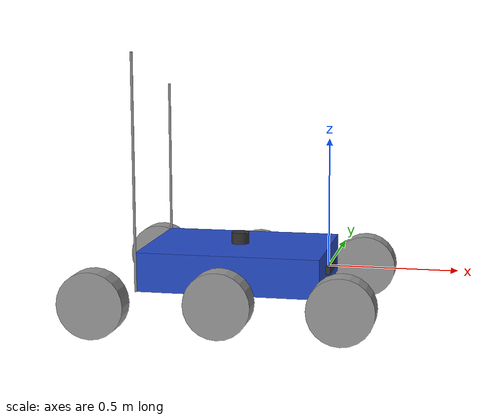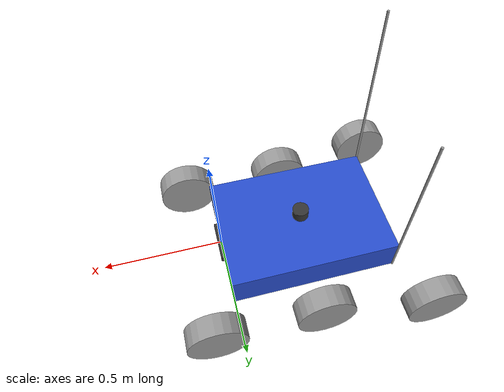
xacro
<?xml version="1.0"?>
<robot xmlns:xacro="http://www.ros.org/wiki/xacro">

    <!-- ROBOT DIMENSIONS (measured Feb 2026, all values in meters) -->
    <xacro:property name="base_length" value="0.7112" />      <!-- 28 inches -->
    <xacro:property name="base_width"  value="0.508"  />      <!-- 20 inches -->
    <xacro:property name="base_height" value="0.1524" />      <!-- 6 inches  -->
    <xacro:property name="base_mass"   value="6.8"    />      <!-- ~15 lbs estimate -->

    <!-- Wheel dimensions (5 in radius including treads+rims, 3.5 in thick) -->
    <xacro:property name="wheel_radius" value="0.127"  />     <!-- 5 inches  -->
    <xacro:property name="wheel_length" value="0.0889" />     <!-- 3.5 inches -->
    <xacro:property name="wheel_mass"   value="0.5"    />

    <!-- Track widths center-of-left-wheel to center-of-right-wheel -->
    <xacro:property name="wheel_separation"      value="0.762"  />  <!-- 30 in — front + mid axles -->
    <xacro:property name="rear_wheel_separation" value="0.9144" />  <!-- 36 in — rear axle (wider) -->

    <!-- Axle X positions (mid axle = chassis center; 18 in = 0.4572 m between each adjacent pair) -->
    <xacro:property name="front_axle_x" value="0.4572"  />    <!-- +18 inches from center -->
    <xacro:property name="mid_axle_x"   value="0.0"     />
    <xacro:property name="rear_axle_x"  value="-0.4572" />    <!-- -18 inches from center -->

    <!-- Antenna heights measured from chassis bottom (two different antennas) -->
    <xacro:property name="left_antenna_height"  value="0.762"  />  <!-- 2.4 GHz — 30 inches, left rear -->
    <xacro:property name="right_antenna_height" value="0.9144" />  <!-- 900 MHz  — 36 inches, right rear -->

    <!-- BASE FOOTPRINT -->
    <link name="base_footprint" />

    <!-- BASE LINK -->
    <link name="base_link">
        <visual>
            <geometry>
                <box size="${base_length} ${base_width} ${base_height}" />
            </geometry>
            <origin xyz="0 0 ${base_height / 2.0}" rpy="0 0 0" />
            <material name="blue" />
        </visual>
        <collision>
            <geometry>
                <box size="${base_length} ${base_width} ${base_height}" />
            </geometry>
            <origin xyz="0 0 ${base_height / 2.0}" rpy="0 0 0" />
        </collision>
        <inertial>
            <mass value="${base_mass}" />
            <origin xyz="0 0 ${base_height / 2.0}" rpy="0 0 0" />
            <inertia ixx="${(1/12) * base_mass * (base_width*base_width + base_height*base_height)}"
                     ixy="0" ixz="0"
                     iyy="${(1/12) * base_mass * (base_length*base_length + base_height*base_height)}"
                     iyz="0"
                     izz="${(1/12) * base_mass * (base_length*base_length + base_width*base_width)}" />
        </inertial>
    </link>

    <!-- WHEEL MACRO -->
    <xacro:macro name="wheel_link" params="prefix">
        <link name="${prefix}_wheel_link">
            <visual>
                <geometry>
                    <cylinder radius="${wheel_radius}" length="${wheel_length}" />
                </geometry>
                <origin xyz="0 0 0" rpy="${pi / 2.0} 0 0" />
                <material name="grey" />
            </visual>
            <collision>
                <geometry>
                    <cylinder radius="${wheel_radius}" length="${wheel_length}" />
                </geometry>
                <origin xyz="0 0 0" rpy="${pi / 2.0} 0 0" />
            </collision>
            <inertial>
                <mass value="${wheel_mass}" />
                <origin xyz="0 0 0" rpy="${pi / 2.0} 0 0" />
                <inertia ixx="${(1/12) * wheel_mass * (3*wheel_radius*wheel_radius + wheel_length*wheel_length)}"
                         ixy="0" ixz="0"
                         iyy="${(1/12) * wheel_mass * (3*wheel_radius*wheel_radius + wheel_length*wheel_length)}"
                         iyz="0"
                         izz="${(1/2) * wheel_mass * wheel_radius*wheel_radius}" />
            </inertial>
        </link>
    </xacro:macro>

    <!-- 6 WHEELS -->
    <xacro:wheel_link prefix="front_left" />
    <xacro:wheel_link prefix="front_right" />
    <xacro:wheel_link prefix="mid_left" />
    <xacro:wheel_link prefix="mid_right" />
    <xacro:wheel_link prefix="rear_left" />
    <xacro:wheel_link prefix="rear_right" />

    <!-- ZED2i CAMERA LINK (named zed_camera_link to match ZED SDK v5 default camera_name='zed') -->
    <link name="zed_camera_link">
        <visual>
            <geometry>
                <box size="0.033 0.175 0.030" />
            </geometry>
            <origin xyz="0 0 0" rpy="0 0 0" />
            <material name="dark_grey">
                <color rgba="0.2 0.2 0.2 1" />
            </material>
        </visual>
        <collision>
            <geometry>
                <box size="0.033 0.175 0.030" />
            </geometry>
        </collision>
        <inertial>
            <mass value="0.175" />
            <inertia ixx="0.000001" ixy="0" ixz="0" iyy="0.000001" iyz="0" izz="0.000001" />
        </inertial>
    </link>

    <!-- LIDAR LINK (LD19) -->
    <link name="laser_frame">
        <visual>
            <geometry>
                <cylinder radius="0.035" length="0.045" />
            </geometry>
            <origin xyz="0 0 0" rpy="0 0 0" />
            <material name="dark_grey">
                <color rgba="0.2 0.2 0.2 1" />
            </material>
        </visual>
        <collision>
            <geometry>
                <cylinder radius="0.035" length="0.045" />
            </geometry>
        </collision>
        <inertial>
            <mass value="0.1" />
            <inertia ixx="0.000001" ixy="0" ixz="0" iyy="0.000001" iyz="0" izz="0.000001" />
        </inertial>
    </link>

    <!-- ANTENNA STICKS (rear of chassis, visual/collision only) -->
    <!-- Left = 2.4 GHz (30 in), Right = 900 MHz (36 in) — different heights -->
    <xacro:macro name="antenna_link" params="prefix height">
        <link name="${prefix}_antenna_link">
            <visual>
                <geometry>
                    <cylinder radius="0.005" length="${height}" />
                </geometry>
                <origin xyz="0 0 0" rpy="0 0 0" />
                <material name="grey" />
            </visual>
            <collision>
                <geometry>
                    <cylinder radius="0.005" length="${height}" />
                </geometry>
            </collision>
            <inertial>
                <mass value="0.05" />
                <inertia ixx="0.000001" ixy="0" ixz="0" iyy="0.000001" iyz="0" izz="0.000001" />
            </inertial>
        </link>
    </xacro:macro>

    <xacro:antenna_link prefix="left"  height="${left_antenna_height}"  />
    <xacro:antenna_link prefix="right" height="${right_antenna_height}" />

    <!-- ==================== JOINTS ==================== -->

    <!-- Base footprint to base link -->
    <joint name="base_joint" type="fixed">
        <parent link="base_footprint" />
        <child link="base_link" />
        <origin xyz="0 0 ${wheel_radius}" rpy="0 0 0"/>
    </joint>

    <!-- WHEEL JOINT MACRO (takes per-axle separation) -->
    <xacro:macro name="wheel_joint" params="prefix x_pos y_offset">
        <joint name="${prefix}_wheel_joint" type="continuous">
            <parent link="base_link" />
            <child link="${prefix}_wheel_link" />
            <origin xyz="${x_pos} ${y_offset} 0" rpy="0 0 0" />
            <axis xyz="0 1 0" />
        </joint>
    </xacro:macro>

    <!-- Front axle (standard width) -->
    <xacro:wheel_joint prefix="front_left" x_pos="${front_axle_x}" y_offset="${wheel_separation / 2.0}" />
    <xacro:wheel_joint prefix="front_right" x_pos="${front_axle_x}" y_offset="${-wheel_separation / 2.0}" />

    <!-- Middle axle (standard width) -->
    <xacro:wheel_joint prefix="mid_left" x_pos="${mid_axle_x}" y_offset="${wheel_separation / 2.0}" />
    <xacro:wheel_joint prefix="mid_right" x_pos="${mid_axle_x}" y_offset="${-wheel_separation / 2.0}" />

    <!-- Rear axle (wider) -->
    <xacro:wheel_joint prefix="rear_left" x_pos="${rear_axle_x}" y_offset="${rear_wheel_separation / 2.0}" />
    <xacro:wheel_joint prefix="rear_right" x_pos="${rear_axle_x}" y_offset="${-rear_wheel_separation / 2.0}" />

    <joint name="camera_footprint_joint" type="fixed">
        <parent link="zed_camera_link" />
        <child link="base_footprint" />
        <origin xyz="-${base_length / 2.0} 0 -${wheel_radius + 0.0762}" rpy="0 0 0" />
    </joint>

    <!-- LIDAR sitting directly on chassis top (no pole yet — placeholder until pole is fabricated) -->
    <joint name="lidar_joint" type="fixed">
        <parent link="base_link" />
        <child link="laser_frame" />
        <origin xyz="0 0 ${base_height + 0.023}" rpy="0 0 -1.5708" />
    </joint>

    <!-- 2.4 GHz antenna left side of back face, base at chassis bottom, rising upward -->
    <joint name="left_antenna_joint" type="fixed">
        <parent link="base_link" />
        <child link="left_antenna_link" />
        <origin xyz="${-base_length / 2.0} ${base_width / 2.0} ${left_antenna_height / 2.0}" rpy="0 0 0" />
    </joint>

    <!-- 900 MHz antenna right side of back face, base at chassis bottom, rising upward -->
    <joint name="right_antenna_joint" type="fixed">
        <parent link="base_link" />
        <child link="right_antenna_link" />
        <origin xyz="${-base_length / 2.0} ${-base_width / 2.0} ${right_antenna_height / 2.0}" rpy="0 0 0" />
    </joint>

</robot>
